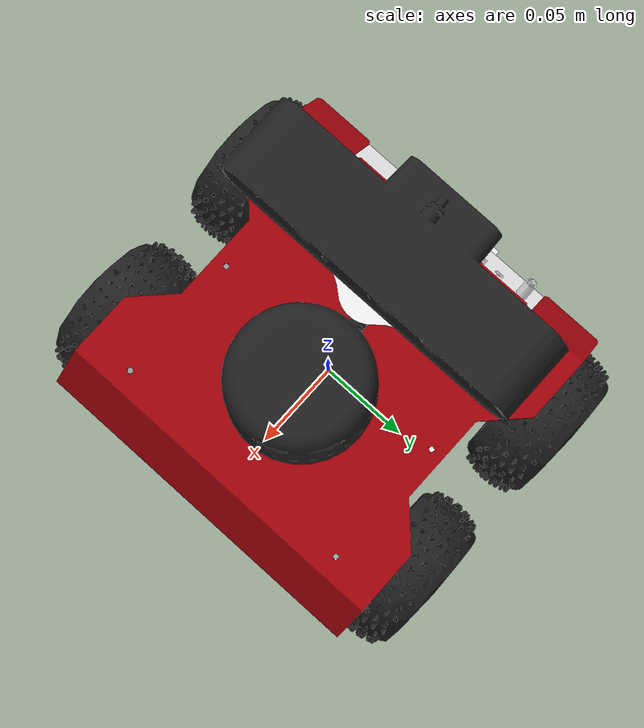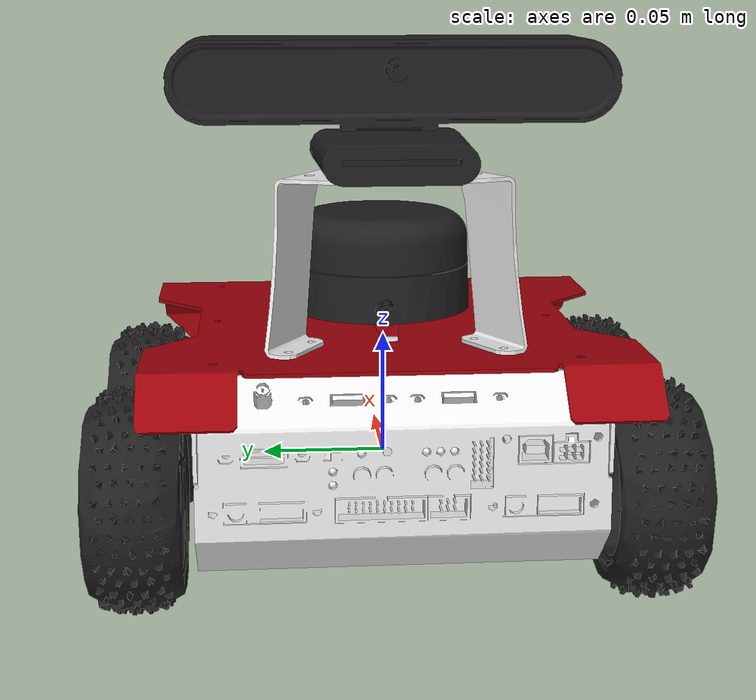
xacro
<?xml version='1.0'?>

<robot name="rosbot"
  xmlns:xacro="http://www.ros.org/wiki/xacro">

  <xacro:property name="cameraSize" value="0.05"/>
  <xacro:property name="cameraMass" value="0.1"/>

  <xacro:include filename="$(find rosbot_description)/urdf/rosbot.gazebo" />
  <xacro:include filename="$(find rosbot_description)/urdf/materials.xacro" />
  <xacro:include filename="$(find rosbot_description)/urdf/macros.xacro" />

  <link name='base_link'>
    <pose>0 0 0.1 0 0 0</pose>

    <inertial>
      <mass value="5"/>
      <origin xyz="0 0 0.04" rpy=" 0 0 0"/>
      <inertia
      ixx="0.01" ixy="0.01" ixz="0"
      iyy="0.01" iyz="0.01"
      izz="0.01"
      />
    </inertial>

    <collision name='collision'>
      <origin xyz="0 0 0.02" rpy="0 0 0"/>
      <geometry>
        <box size="0.20 0.15 0.04"/>
      </geometry>
    </collision>

    <visual name='base_link_visual'>
      <origin xyz="0 0 -0.02" rpy=" 1.5707 0 1.5707"/>
      <geometry>
        <mesh filename="package://rosbot_description/meshes/box_fix.dae" scale="0.001 0.001 0.001" />
      </geometry>
    </visual>

  </link>

  <joint name="top_joint" type="fixed">
    <axis xyz="0 1 0" />
    <origin xyz="0 0 0" rpy="0 0 0"/>
    <parent link="base_link"/>
    <child link="top"/>
  </joint>

  <link name='top'>
    <pose>0 0 0 0 0 0</pose>

    <inertial>
      <mass value="0.01"/>
      <origin xyz="0 0 0.055" rpy=" 0 0 0"/>
      <inertia
      ixx="0.0" ixy="0" ixz="0"
      iyy="0.0" iyz="0"
      izz="0.0"
      />
    </inertial>
    <visual name='top'>
      <origin xyz="0 0 0.055" rpy=" 1.5707 0 1.5707"/>
      <geometry>
        <mesh filename="package://rosbot_description/meshes/upper_fix.dae" scale="0.001 0.001 0.001" />
      </geometry>
    </visual>
  </link>

  <link name="front_left_wheel">
    <collision name="collision">
      <origin xyz="0 0 0" rpy="0 0 1.5707"/>
      <geometry>
        <mesh filename="package://rosbot_description/meshes/wheel_fix.dae" scale="0.001 0.001 0.001" />
      </geometry>
      <surface>
        <friction>
          <ode>
            <mu>10</mu>
            <mu2>10</mu2>
          </ode>
        </friction>
      </surface>
    </collision>
    <visual name="front_left_wheel_visual">
      <origin xyz="0 0 0" rpy="0 0 1.5707"/>
      <geometry>
        <mesh filename="package://rosbot_description/meshes/wheel_fix.dae" scale="0.001 0.001 0.001" />
      </geometry>
      <material name="black"/>
    </visual>
    <inertial>
      <origin xyz="0 0 0" rpy="0 1.5707 1.5707"/>
      <mass value="0.5"/>
      <inertia
      ixx="0.001" ixy="0.0" ixz="0.0"
      iyy="0.001" iyz="0.0"
      izz="0.001"/>
    </inertial>
  </link>

  <link name="front_right_wheel">
    <collision name="collision">
      <origin xyz="0 0 0" rpy="0 0 -1.5707"/>
      <geometry>
        <mesh filename="package://rosbot_description/meshes/wheel_fix.dae" scale="0.001 0.001 0.001" />
      </geometry>
      <surface>
        <friction>
          <ode>
            <mu>10</mu>
            <mu2>10</mu2>
          </ode>
        </friction>
      </surface>
    </collision>
    <visual name="front_right_wheel_visual">
      <origin xyz="0 0 0" rpy="0 0 -1.5707"/>
      <geometry>
        <mesh filename="package://rosbot_description/meshes/wheel_fix.dae" scale="0.001 0.001 0.001" />
      </geometry>
    </visual>
    <inertial>
      <origin xyz="0 0 0" rpy="0 1.5707 1.5707"/>
      <mass value="0.5"/>
      <inertia
      ixx="0.001" ixy="0.0" ixz="0.0"
      iyy="0.001" iyz="0.0"
      izz="0.001"/>
    </inertial>
  </link>

  <link name="rear_left_wheel">
    <collision name="collision">
      <origin xyz="0 0 0" rpy="0 0 1.5707"/>
      <geometry>
        <mesh filename="package://rosbot_description/meshes/wheel_fix.dae" scale="0.001 0.001 0.001" />
      </geometry>
      <surface>
        <friction>
          <ode>
            <mu>10</mu>
            <mu2>10</mu2>
          </ode>
        </friction>
      </surface>
    </collision>
    <visual name="rear_left_wheel_visual">
      <origin xyz="0 0 0" rpy="0 0 1.5707"/>
      <geometry>
        <mesh filename="package://rosbot_description/meshes/wheel_fix.dae" scale="0.001 0.001 0.001" />
      </geometry>
    </visual>
    <inertial>
      <origin xyz="0 0 0" rpy="0 1.5707 1.5707"/>
      <mass value="0.5"/>
      <inertia
      ixx="0.001" ixy="0.0" ixz="0.0"
      iyy="0.001" iyz="0.0"
      izz="0.001"/>
    </inertial>
  </link>

  <link name="rear_right_wheel">
    <collision name="collision">
      <origin xyz="0 0 0" rpy="0 0 -1.5707"/>
      <geometry>
        <mesh filename="package://rosbot_description/meshes/wheel_fix.dae" scale="0.001 0.001 0.001" />
      </geometry>
      <surface>
        <friction>
          <ode>
            <mu>10</mu>
            <mu2>10</mu2>
          </ode>
        </friction>
      </surface>
    </collision>
    <visual name="rear_right_wheel_visual">
      <origin xyz="0 0 0" rpy="0 0 -1.5707"/>
      <geometry>
        <mesh filename="package://rosbot_description/meshes/wheel_fix.dae" scale="0.001 0.001 0.001" />
      </geometry>
    </visual>
    <inertial>
      <origin xyz="0 0 0" rpy="0 1.5707 1.5707"/>
      <mass value="0.5"/>
      <inertia
      ixx="0.001" ixy="0.0" ixz="0.0"
      iyy="0.001" iyz="0.0"
      izz="0.001"/>
    </inertial>
  </link>

  <joint type="continuous" name="front_left_wheel_hinge">
    <origin xyz="0.05 0.11 0" rpy="0 0 0"/>
    <child link="front_left_wheel"/>
    <parent link="base_link"/>
    <axis xyz="0 1 0" rpy="0 0 0"/>
    <limit effort="1" velocity="10"/>
    <joint_properties damping="5.0" friction="1.0"/>
  </joint>

  <transmission name="front_left_wheel_trans" type="SimpleTransmission">
    <type>transmission_interface/SimpleTransmission</type>
    <actuator name="front_left_wheel_motor">
      <mechanicalReduction>1</mechanicalReduction>
    </actuator>
    <joint name="front_left_wheel_hinge">
      <hardwareInterface>hardware_interface/EffortJointInterface</hardwareInterface>
    </joint>
  </transmission>

  <joint type="continuous" name="front_right_wheel_hinge">
    <origin xyz="0.05 -0.11 0" rpy="0 0 0"/>
    <child link="front_right_wheel"/>
    <parent link="base_link"/>
    <axis xyz="0 1 0" rpy="0 0 0"/>
    <limit effort="1" velocity="10"/>
    <joint_properties damping="5.0" friction="1.0"/>
  </joint>

  <transmission name="front_right_wheel_trans" type="SimpleTransmission">
    <type>transmission_interface/SimpleTransmission</type>
    <actuator name="front_right_wheel_motor">
      <mechanicalReduction>1</mechanicalReduction>
    </actuator>
    <joint name="front_right_wheel_hinge">
      <hardwareInterface>hardware_interface/EffortJointInterface</hardwareInterface>
    </joint>
  </transmission>

  <joint type="continuous" name="rear_left_wheel_hinge">
    <origin xyz="-0.055 0.11 0" rpy="0 0 0"/>
    <child link="rear_left_wheel"/>
    <parent link="base_link"/>
    <axis xyz="0 1 0" rpy="0 0 0"/>
    <limit effort="1" velocity="10"/>
    <joint_properties damping="5.0" friction="1.0"/>
  </joint>

  <transmission name="rear_left_wheel_trans" type="SimpleTransmission">
    <type>transmission_interface/SimpleTransmission</type>
    <actuator name="rear_left_wheel_motor">
      <mechanicalReduction>1</mechanicalReduction>
    </actuator>
    <joint name="rear_left_wheel_hinge">
      <hardwareInterface>hardware_interface/EffortJointInterface</hardwareInterface>
    </joint>
  </transmission>

  <joint type="continuous" name="rear_right_wheel_hinge">
    <origin xyz="-0.055 -0.11 0" rpy="0 0 0"/>
    <child link="rear_right_wheel"/>
    <parent link="base_link"/>
    <axis xyz="0 1 0" rpy="0 0 0"/>
    <limit effort="1" velocity="10"/>
    <joint_properties damping="5.0" friction="1.0"/>
  </joint>

  <transmission name="rear_right_wheel_trans" type="SimpleTransmission">
    <type>transmission_interface/SimpleTransmission</type>
    <actuator name="rear_right_wheel_motor">
      <mechanicalReduction>1</mechanicalReduction>
    </actuator>
    <joint name="rear_right_wheel_hinge">
      <hardwareInterface>hardware_interface/EffortJointInterface</hardwareInterface>
    </joint>
  </transmission>

  <!-- Orbbec Astra RGBD Camera -->
  <joint name="astra_joint" type="fixed">
    <axis xyz="0 0 0" />
    <origin xyz="-0.03 0 0.18" rpy="0 0 0"/>
    <parent link="base_link"/>
    <child link="camera_link"/>
  </joint>

  <link name="camera_link">
    <collision>
      <origin xyz="0.02 0 0" rpy="0 0 0"/>
      <geometry>0
        <box size="0.001 0.001 0.001"/>
      </geometry>
    </collision>

    <visual>
      <origin xyz="-0.01 0 -0.03" rpy="1.5707 0 1.5707"/>
      <geometry>
        <mesh filename="package://rosbot_description/meshes/astra_fix.dae" scale="0.001 0.001 0.001" />
      </geometry>
    </visual>

    <inertial>
      <mass value="1e-5" />
      <origin xyz="0 0 0" rpy="0 0 0"/>
      <inertia ixx="0" ixy="0" ixz="0" iyy="0" iyz="0" izz="0" />
    </inertial>
  </link>

  <joint name="camera_optical_joint" type="fixed">
    <origin xyz="0 0 0" rpy="${-pi/2} 0 ${-pi/2}"/>
    <parent link="camera_link"/>
    <child link="camera_rgb_frame"/>
  </joint>

  <link name="camera_rgb_frame">
  </link>

  <joint name="camera_depth_joint" type="fixed">
    <origin xyz="0 0 0" rpy="${-pi/2} 0 ${-pi/2}"/>
    <parent link="camera_link"/>
    <child link="camera_depth_frame"/>
  </joint>

  <link name="camera_depth_frame">
  </link>

  <joint name="rplidar_joint" type="fixed">
    <axis xyz="0 1 0" />
    <origin xyz="0.02 0 0" rpy="0 0 3.14"/>
    <parent link="base_link"/>
    <child link="laser"/>
  </joint>

  <!-- rplidar Laser -->
  <link name="laser">
    <collision>
      <origin xyz="0 0 0.058" rpy="1.5707 0 4.71"/>
      <geometry>
        <mesh filename="package://rosbot_description/meshes/rplidar_fix.dae" scale="0.001 0.001 0.001" />
      </geometry>
    </collision>

    <visual>
      <origin xyz="0 0 0.058" rpy="1.5707 0 4.71"/>
      <geometry>
        <mesh filename="package://rosbot_description/meshes/rplidar_fix.dae" scale="0.001 0.001 0.001" />
      </geometry>
    </visual>

    <inertial>
      <mass value="1e-5" />
      <origin xyz="0 0 0.058" rpy="1.5707 0 4.71"/>
      <inertia ixx="0" ixy="0" ixz="0" iyy="0" iyz="0" izz="0" />
    </inertial>
  </link>

  <joint name="range_fl_joint" type="fixed">
    <axis xyz="0 1 0" />
    <origin xyz="0.1 0.05 0.01" rpy="0 0 0.13 "/>
    <parent link="base_link"/>
    <child link="range_fl"/>
  </joint>
  <link name="range_fl"></link>

  <joint name="range_fr_joint" type="fixed">
    <axis xyz="0 1 0" />
    <origin xyz="0.1 -0.05 0.01" rpy="0 0 -0.13 "/>
    <parent link="base_link"/>
    <child link="range_fr"/>
  </joint>
  <link name="range_fr"></link>

  <joint name="range_rl_joint" type="fixed">
    <axis xyz="0 1 0" />
    <origin xyz="-0.1 0.05 0.01" rpy="0 0 3.01 "/>
    <parent link="base_link"/>
    <child link="range_rl"/>
  </joint>
  <link name="range_rl"></link>

  <joint name="range_rr_joint" type="fixed">
    <axis xyz="0 1 0" />
    <origin xyz="-0.1 -0.05 0.01" rpy="0 0 3.27 "/>
    <parent link="base_link"/>
    <child link="range_rr"/>
  </joint>
  <link name="range_rr"></link>

</robot>
